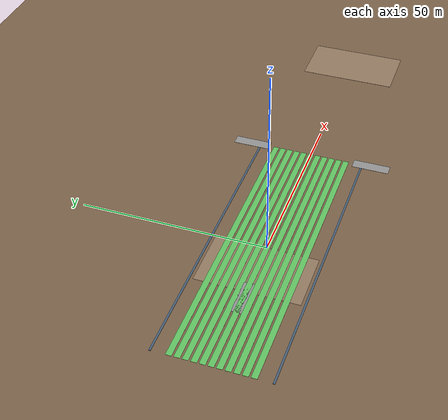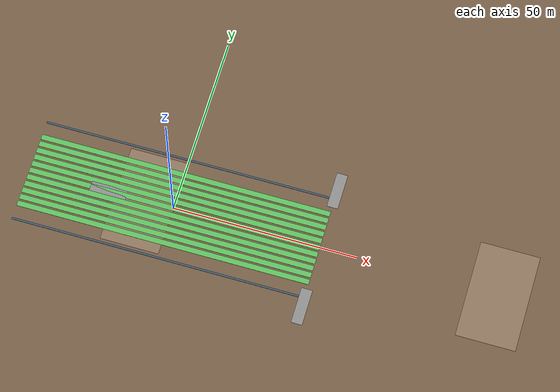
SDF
<sdf version="1.8">
 <world name="realistic_vineyard_world">
  <model name="vineyard_terrain">
   <static>true</static>
   <link name="terrain_link">
    <collision name="ground_collision">
     <geometry><plane><normal>0 0 1</normal><size>200 120</size></plane></geometry>
     <surface><friction><ode><mu>0.8</mu><mu2>0.7</mu2></ode></friction></surface>
    </collision>
    <visual name="ground_visual">
     <geometry><plane><normal>0 0 1</normal><size>200 120</size></plane></geometry>
     <material>
      <ambient>0.4 0.3 0.2 1</ambient>
      <diffuse>0.5 0.4 0.3 1</diffuse>
      <specular>0.1 0.1 0.1 1</specular>
     </material>
    </visual>
    <visual name="grass_strip_1">
     <pose>0 -10.0 0.01 0 0 0</pose>
     <geometry><box><size>80.0 1.5 0.02</size></box></geometry>
     <material><ambient>0.3 0.6 0.3 1</ambient><diffuse>0.4 0.8 0.4 1</diffuse></material>
    </visual>
    <visual name="grass_strip_2">
     <pose>0 -8.0 0.01 0 0 0</pose>
     <geometry><box><size>80.0 1.5 0.02</size></box></geometry>
     <material><ambient>0.3 0.6 0.3 1</ambient><diffuse>0.4 0.8 0.4 1</diffuse></material>
    </visual>
    <visual name="grass_strip_3">
     <pose>0 -6.0 0.01 0 0 0</pose>
     <geometry><box><size>80.0 1.5 0.02</size></box></geometry>
     <material><ambient>0.3 0.6 0.3 1</ambient><diffuse>0.4 0.8 0.4 1</diffuse></material>
    </visual>
    <visual name="grass_strip_4">
     <pose>0 -4.0 0.01 0 0 0</pose>
     <geometry><box><size>80.0 1.5 0.02</size></box></geometry>
     <material><ambient>0.3 0.6 0.3 1</ambient><diffuse>0.4 0.8 0.4 1</diffuse></material>
    </visual>
    <visual name="grass_strip_5">
     <pose>0 -2.0 0.01 0 0 0</pose>
     <geometry><box><size>80.0 1.5 0.02</size></box></geometry>
     <material><ambient>0.3 0.6 0.3 1</ambient><diffuse>0.4 0.8 0.4 1</diffuse></material>
    </visual>
    <visual name="grass_strip_6">
     <pose>0 0.0 0.01 0 0 0</pose>
     <geometry><box><size>80.0 1.5 0.02</size></box></geometry>
     <material><ambient>0.3 0.6 0.3 1</ambient><diffuse>0.4 0.8 0.4 1</diffuse></material>
    </visual>
    <visual name="grass_strip_7">
     <pose>0 2.0 0.01 0 0 0</pose>
     <geometry><box><size>80.0 1.5 0.02</size></box></geometry>
     <material><ambient>0.3 0.6 0.3 1</ambient><diffuse>0.4 0.8 0.4 1</diffuse></material>
    </visual>
    <visual name="grass_strip_8">
     <pose>0 4.0 0.01 0 0 0</pose>
     <geometry><box><size>80.0 1.5 0.02</size></box></geometry>
     <material><ambient>0.3 0.6 0.3 1</ambient><diffuse>0.4 0.8 0.4 1</diffuse></material>
    </visual>
    <visual name="grass_strip_9">
     <pose>0 6.0 0.01 0 0 0</pose>
     <geometry><box><size>80.0 1.5 0.02</size></box></geometry>
     <material><ambient>0.3 0.6 0.3 1</ambient><diffuse>0.4 0.8 0.4 1</diffuse></material>
    </visual>
    <visual name="grass_strip_10">
     <pose>0 8.0 0.01 0 0 0</pose>
     <geometry><box><size>80.0 1.5 0.02</size></box></geometry>
     <material><ambient>0.3 0.6 0.3 1</ambient><diffuse>0.4 0.8 0.4 1</diffuse></material>
    </visual>
    <visual name="grass_strip_11">
     <pose>0 10.0 0.01 0 0 0</pose>
     <geometry><box><size>80.0 1.5 0.02</size></box></geometry>
     <material><ambient>0.3 0.6 0.3 1</ambient><diffuse>0.4 0.8 0.4 1</diffuse></material>
    </visual>
    <visual name="headland_west">
     <pose>-8.0 0 0.005 0 0 0</pose>
     <geometry><box><size>16.0 27.0 0.01</size></box></geometry>
     <material><ambient>0.5 0.4 0.3 1</ambient><diffuse>0.6 0.5 0.4 1</diffuse></material>
    </visual>
    <visual name="headland_east">
     <pose>88.0 0 0.005 0 0 0</pose>
     <geometry><box><size>16.0 27.0 0.01</size></box></geometry>
     <material><ambient>0.5 0.4 0.3 1</ambient><diffuse>0.6 0.5 0.4 1</diffuse></material>
    </visual>
    <visual name="access_road_main">
     <pose>-18.0 0 0.01 0 0 0</pose>
     <geometry><box><size>10 3 0.02</size></box></geometry>
     <material><ambient>0.4 0.4 0.4 1</ambient><diffuse>0.6 0.6 0.6 1</diffuse></material>
    </visual>
    <visual name="access_road_north">
     <pose>40.0 -17.0 0.01 0 0 1.57</pose>
     <geometry><box><size>10 3 0.02</size></box></geometry>
     <material><ambient>0.4 0.4 0.4 1</ambient><diffuse>0.6 0.6 0.6 1</diffuse></material>
    </visual>
    <visual name="access_road_south">
     <pose>40.0 17.0 0.01 0 0 1.57</pose>
     <geometry><box><size>10 3 0.02</size></box></geometry>
     <material><ambient>0.4 0.4 0.4 1</ambient><diffuse>0.6 0.6 0.6 1</diffuse></material>
    </visual>
    <visual name="drainage_north">
     <pose>0 -14.5 -0.1 0 0 0</pose>
     <geometry><box><size>80.0 0.5 0.2</size></box></geometry>
     <material><ambient>0.2 0.3 0.4 1</ambient><diffuse>0.3 0.4 0.5 1</diffuse></material>
    </visual>
    <visual name="drainage_south">
     <pose>0 14.5 -0.1 0 0 0</pose>
     <geometry><box><size>80.0 0.5 0.2</size></box></geometry>
     <material><ambient>0.2 0.3 0.4 1</ambient><diffuse>0.3 0.4 0.5 1</diffuse></material>
    </visual>
   </link>
  </model>
 </world>
</sdf>
